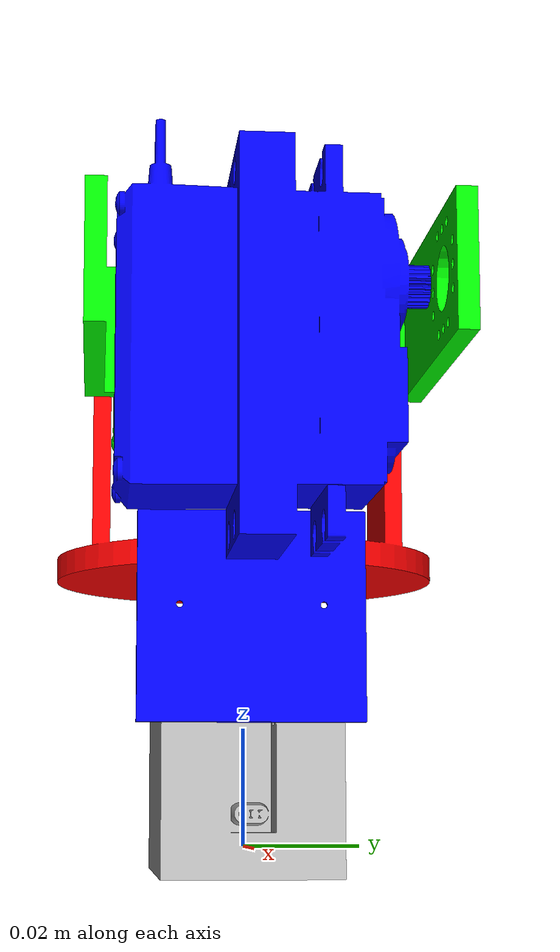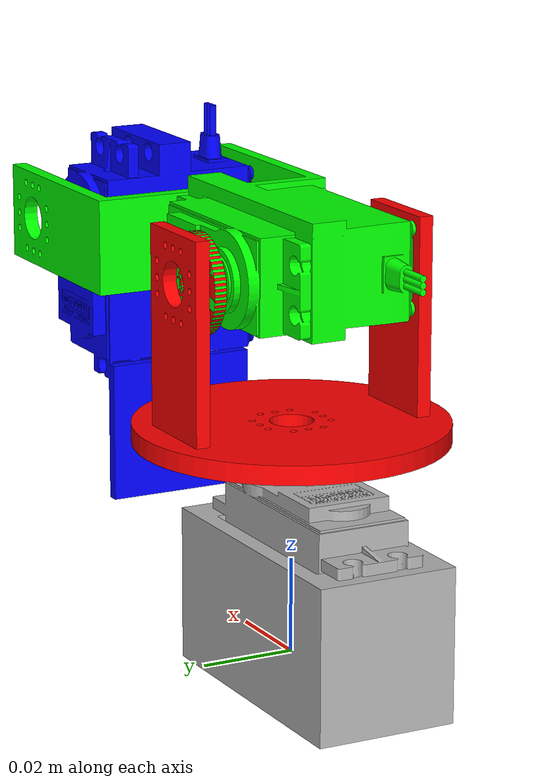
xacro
<?xml version="1.0"?>

<robot name="mono_observer" xmlns:xacro="http://ros.org/wiki/xacro">

    <xacro:property name="package_name" value="mono_observer_description" />

    <xacro:include filename="$(find ${package_name})/urdf/xacro_properties.xacro"/>

    <xacro:include filename="$(find ${package_name})/urdf/mono_observer_urdf.xacro"/>

    <xacro:include filename="$(find ${package_name})/urdf/trajectory_controller_gz.xacro"/>

</robot>

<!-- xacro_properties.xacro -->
<robot xmlns:xacro="http://ros.org/wiki/xacro" >

    <xacro:property name="base_mesh" value="package://mono_observer_description/meshes/Base.stl"/>
    <xacro:property name="cintura_mesh" value="package://mono_observer_description/meshes/Cintura.stl"/>
    <xacro:property name="antebrazo_mesh" value="package://mono_observer_description/meshes/Antebrazo.stl"/>
    <xacro:property name="soporte_camara_mesh" value="package://mono_observer_description/meshes/Camara.stl"/>

</robot>

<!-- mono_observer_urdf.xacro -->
<robot xmlns:xacro="http://ros.org/wiki/xacro">

    <link name="base_link">
        <inertial>
            <origin xyz="0.0 0.0 0.0" rpy="0 0 0" />
            <mass value="0.02" />
            <inertia ixx="1" ixy="0" ixz="0" iyy="1" iyz="0" izz="1" />
        </inertial>
        <visual>
            <origin xyz="0 0 0" rpy="0 0 0"/>
            <geometry>
                <mesh filename="${base_mesh}"/>
            </geometry>
            <material name="gray">
                <color rgba="0.7 0.7 0.7 1"/>
            </material>
        </visual>
        <collision>
            <origin xyz="-0.0075 0 0.02" rpy="0 0 0"/>
            <geometry>
                <box size="0.06 0.03 0.04"/>
            </geometry>
        </collision>
    </link>

    <link name="link_1">
        <inertial>
            <origin xyz="0.0 0.0 0.0" rpy="0 0 0" />
            <mass value="0.02" />
            <inertia ixx="1" ixy="0" ixz="0" iyy="1" iyz="0" izz="1" />
        </inertial>
        <visual>
            <origin xyz="0 0 -0.05" rpy="0 0 0"/>
            <geometry>
                <mesh filename="${cintura_mesh}"/>
            </geometry>
            <material name="red">
                <color rgba="1 0 0 1"/>
            </material>
        </visual>
        <collision>
            <origin xyz="0 0 0" rpy="0 0 0"/>
            <geometry>
                <box size="0.03 0.03 0.01"/>
            </geometry>
        </collision>
    </link>

    <link name="link_2">
        <inertial>
            <origin xyz="0.0 0.0 0.0" rpy="0 0 0" />
            <mass value="0.02" />
            <inertia ixx="1" ixy="0" ixz="0" iyy="1" iyz="0" izz="1" />
        </inertial>
        <visual>
            <origin xyz="0 0 -0.08" rpy="0 0 0"/>
            <geometry>
                <mesh filename="${antebrazo_mesh}"/>
            </geometry>
            <material name="green">
                <color rgba="0 1 0 1"/>
            </material>
        </visual>
        <collision>
            <origin xyz="0 0 0.01" rpy="0 0 0"/>
            <geometry>
                <box size="0.04 0.03 0.05"/>
            </geometry>
        </collision>
    </link>

    <link name="link_3">
        <inertial>
            <origin xyz="0.0 0.0 0.0" rpy="0 0 0" />
            <mass value="0.02" />
            <inertia ixx="1" ixy="0" ixz="0" iyy="1" iyz="0" izz="1" />
        </inertial>
        <visual>
            <origin xyz="0 0 -0.15" rpy="0 0 0"/>
            <geometry>
                <mesh filename="${soporte_camara_mesh}"/>
            </geometry>
            <material name="blue">
                <color rgba="0 0 1 1"/>
            </material>
        </visual>
        <collision>
            <origin xyz="0 0 0.0075" rpy="0 0 0"/>
            <geometry>
                <box size="0.04 0.03 0.05"/>
            </geometry>
        </collision>
    </link>

    <joint name="base_1_joint" type="revolute">
        <origin xyz="0 0 0.05" rpy="0 0 0"/>
        <parent link="base_link"/>
        <child link="link_1"/>
        <axis xyz="0 0 1" rpy="0 0 0"/>
        <limit effort="30" velocity="1.0" lower="-3.1415" upper="0" />
    </joint>

    <joint name="1_2_joint" type="revolute">
        <origin xyz="0 0 0.03" rpy="0 1.5708 0"/>
        <parent link="link_1"/>
        <child link="link_2"/>
        <axis xyz="0 1 0" rpy="0 0 0"/>
        <limit effort="30" velocity="1.0" lower="-3.1415" upper="0" />
    </joint>

    <joint name="2_3_joint" type="revolute">
        <origin xyz="0 0 0.071" rpy="0 1.5708 0"/>
        <parent link="link_2"/>
        <child link="link_3"/>
        <axis xyz="0 1 0" rpy="0 0 0"/>
        <limit effort="30" velocity="1.0" lower="-3.1415" upper="0" />
    </joint>

</robot>
